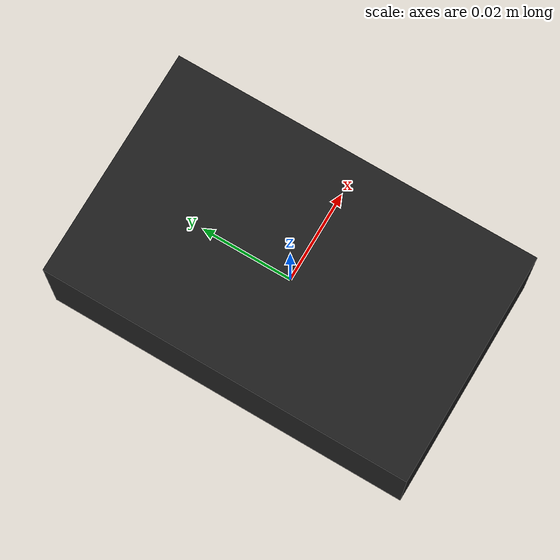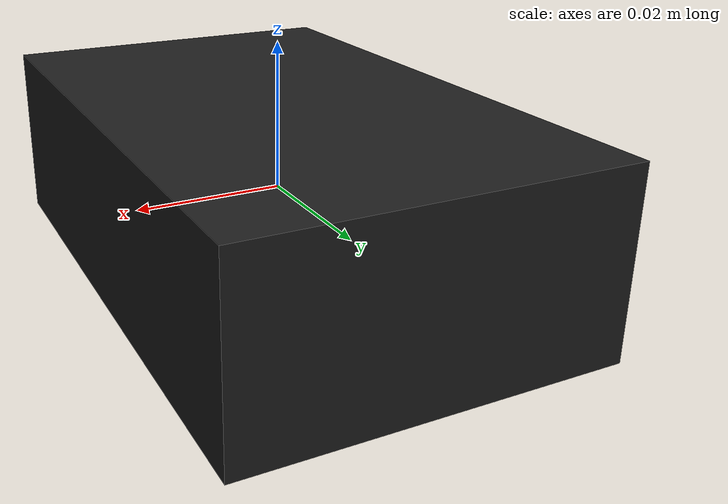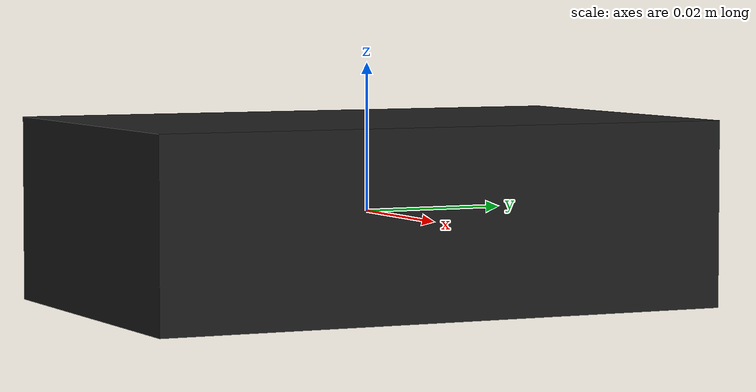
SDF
<?xml version="1.0"?>
<sdf version="1.6">
  <model name="mine_depth_camera">
    <static>false</static>
    <link name="link">
      <inertial>
        <mass>0.02</mass>
        <inertia>
          <ixx>1e-5</ixx><iyy>1e-5</iyy><izz>1e-5</izz>
          <ixy>0</ixy><ixz>0</ixz><iyz>0</iyz>
        </inertia>
      </inertial>
      <visual name="housing">
        <geometry><box><size>0.05 0.08 0.025</size></box></geometry>
        <material><ambient>0.08 0.08 0.08 1</ambient><diffuse>0.12 0.12 0.12 1</diffuse></material>
      </visual>
      <!-- Gazebo cameras render along local +X; +90deg pitch maps it to vehicle -Z. -->
      <sensor name="mine_depth_camera" type="depth">
        <pose>0 0 -0.02 0 1.57079632679 0</pose>
        <!-- Keep both the sensor and ROS plugin alive for camera health
             monitoring. CPU load is controlled by reversible inference
             throttling, not by unregistering the image publisher. -->
        <always_on>true</always_on>
        <update_rate>4</update_rate>
        <camera>
          <horizontal_fov>1.5009831567</horizontal_fov>
          <image><format>R8G8B8</format><width>960</width><height>540</height></image>
          <clip><near>0.05</near><far>20.0</far></clip>
        </camera>
        <plugin name="mine_camera_controller" filename="libgazebo_ros_openni_kinect.so">
          <cameraName>mine_camera</cameraName>
          <!-- Explicit root namespace keeps topics stable even when this model
               is nested inside a PX4 vehicle with a different spawn name. -->
          <robotNamespace>/</robotNamespace>
          <alwaysOn>true</alwaysOn>
          <updateRate>4</updateRate>
          <pointCloudCutoff>0.10</pointCloudCutoff>
          <pointCloudCutoffMax>20.0</pointCloudCutoffMax>
          <imageTopicName>rgb/image_raw</imageTopicName>
          <cameraInfoTopicName>rgb/camera_info</cameraInfoTopicName>
          <depthImageTopicName>depth/image_raw</depthImageTopicName>
          <depthImageCameraInfoTopicName>depth/camera_info</depthImageCameraInfoTopicName>
          <pointCloudTopicName>depth/points</pointCloudTopicName>
          <frameName>mine_camera_optical_frame</frameName>
          <distortion_k1>0</distortion_k1><distortion_k2>0</distortion_k2>
          <distortion_k3>0</distortion_k3><distortion_t1>0</distortion_t1><distortion_t2>0</distortion_t2>
        </plugin>
      </sensor>
    </link>
  </model>
</sdf>
